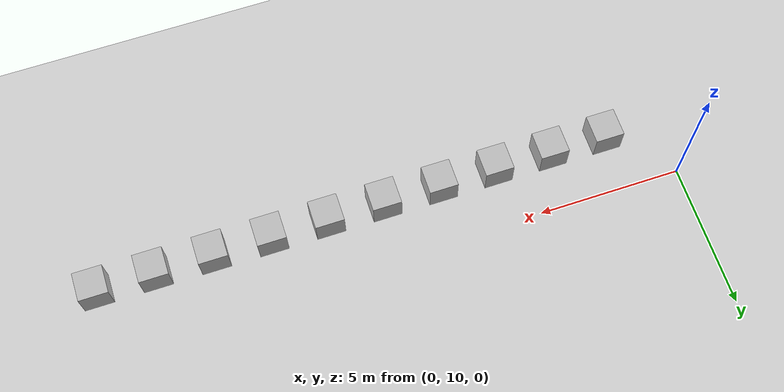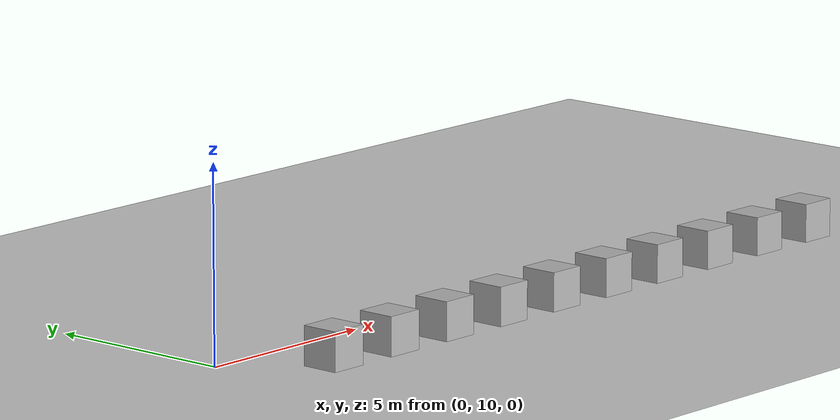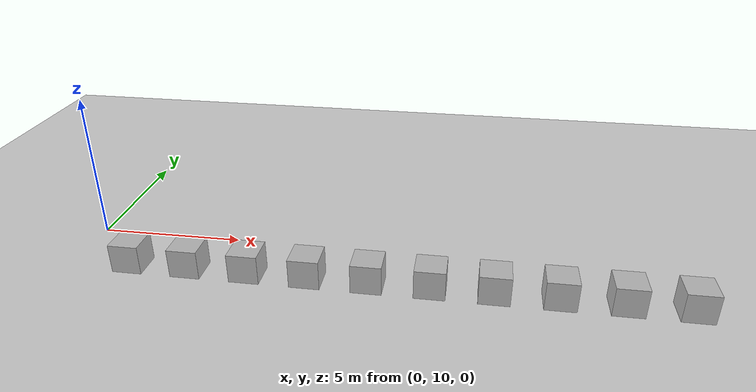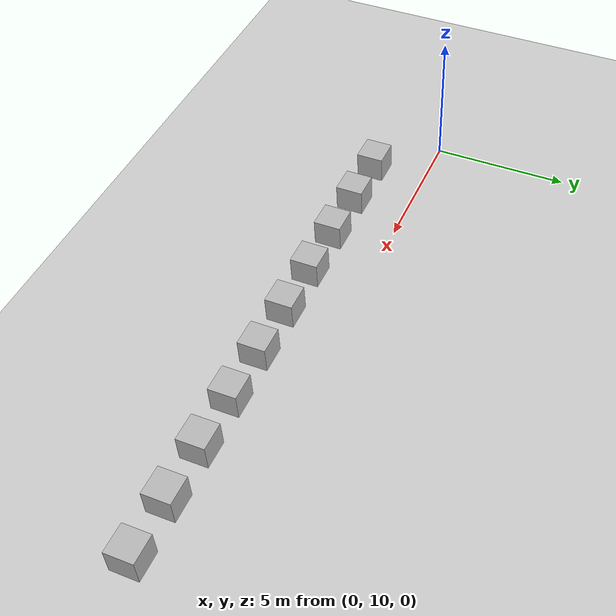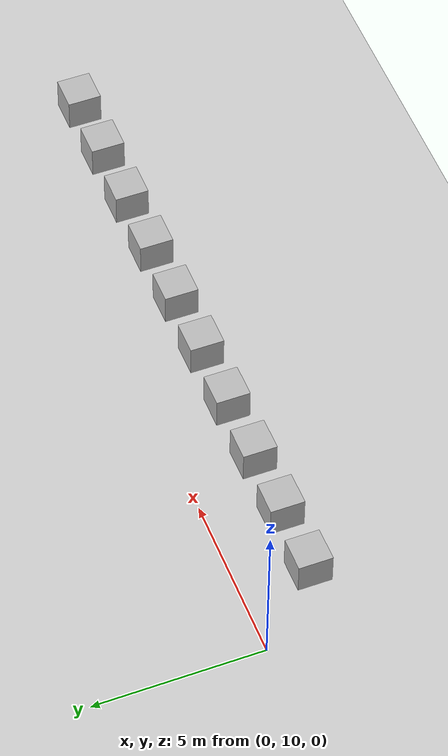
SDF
<?xml version="1.0" ?>
<sdf version="1.5">
  <world name="default">
    <gui fullscreen='0'>
      <camera name='user_camera'>
        <pose>32 0 13.5  0 0.6 3.14159</pose>
        <view_controller>orbit</view_controller>
      </camera>
    </gui>
    <scene>
      <ambient>1 1 1 1</ambient>
      <background>0.7 0.7 0.7 1</background>
      <shadows>1</shadows>
    </scene>
    <physics type="ode">
      <gravity>0 -1 -1</gravity>
      <ode>
        <solver>
          <type>quick</type>
          <iters>50</iters>
          <precon_iters>0</precon_iters>
          <sor>1.3</sor>
        </solver>
        <constraints>
          <cfm>0</cfm>
          <erp>0.2</erp>
          <contact_max_correcting_vel>100</contact_max_correcting_vel>
          <contact_surface_layer>0.001</contact_surface_layer>
        </constraints>
      </ode>
      <real_time_update_rate>0</real_time_update_rate>
      <max_step_size>0.001</max_step_size>
    </physics>
    <include>
      <uri>model://ground_plane</uri>
    </include>

    <model name="box_01_model">
      <allow_auto_disable>0</allow_auto_disable>
      <pose>2 8 0.5 0 0 0</pose>
      <link name="box_01_body">
        <inertial>
          <pose>0 0 -0.5 0 0 0</pose>
          <inertia>
            <ixx>0.16666666666666666</ixx>
            <ixy>0</ixy>
            <ixz>0</ixz>
            <iyy>0.16666666666666666</iyy>
            <iyz>0</iyz>
            <izz>0.16666666666666666</izz>
          </inertia>
          <mass>1</mass>
        </inertial>
        <collision name="box_01_geom">
          <geometry>
            <box>
              <size>1 1 1</size>
            </box>
          </geometry>
          <surface>
            <friction>
              <ode>
                <mu>0.998</mu>
                <mu2>0.998</mu2>
                <slip1>0</slip1>
                <slip2>0</slip2>
              </ode>
            </friction>
            <contact>
              <ode>
                <soft_cfm>0</soft_cfm>
                <soft_erp>0.2</soft_erp>
                <kp>100000</kp>
                <kd>1</kd>
                <max_vel>100</max_vel>
                <min_depth>0.001</min_depth>
              </ode>
            </contact>
          </surface>
        </collision>
        <visual name="box_01_geom_visual">
          <geometry>
            <box>
              <size>1 1 1</size>
            </box>
          </geometry>
          <material>
            <script>Gazebo/Rocky</script>
          </material>
        </visual>
      </link>
    </model>

    <model name="box_02_model">
      <allow_auto_disable>0</allow_auto_disable>
      <pose>4 8 0.5 0 0 0</pose>
      <link name="box_02_body">
        <inertial>
          <pose>0 0 -0.5 0 0 0</pose>
          <inertia>
            <ixx>0.16666666666666666</ixx>
            <ixy>0</ixy>
            <ixz>0</ixz>
            <iyy>0.16666666666666666</iyy>
            <iyz>0</iyz>
            <izz>0.16666666666666666</izz>
          </inertia>
          <mass>1</mass>
        </inertial>
        <collision name="box_02_geom">
          <geometry>
            <box>
              <size>1 1 1</size>
            </box>
          </geometry>
          <surface>
            <friction>
              <ode>
                <mu>0.9985</mu>
                <mu2>0.9985</mu2>
                <slip1>0</slip1>
                <slip2>0</slip2>
              </ode>
            </friction>
            <contact>
              <ode>
                <soft_cfm>0</soft_cfm>
                <soft_erp>0.2</soft_erp>
                <kp>100000</kp>
                <kd>1</kd>
                <max_vel>100</max_vel>
                <min_depth>0.001</min_depth>
              </ode>
            </contact>
          </surface>
        </collision>
        <visual name="box_02_geom_visual">
          <geometry>
            <box>
              <size>1 1 1</size>
            </box>
          </geometry>
          <material>
            <script>Gazebo/Rocky</script>
          </material>
        </visual>
      </link>
    </model>

    <model name="box_03_model">
      <allow_auto_disable>0</allow_auto_disable>
      <pose>6 8 0.5 0 0 0</pose>
      <link name="box_03_body">
        <inertial>
          <pose>0 0 -0.5 0 0 0</pose>
          <inertia>
            <ixx>0.16666666666666666</ixx>
            <ixy>0</ixy>
            <ixz>0</ixz>
            <iyy>0.16666666666666666</iyy>
            <iyz>0</iyz>
            <izz>0.16666666666666666</izz>
          </inertia>
          <mass>1</mass>
        </inertial>
        <collision name="box_03_geom">
          <geometry>
            <box>
              <size>1 1 1</size>
            </box>
          </geometry>
          <surface>
            <friction>
              <ode>
                <mu>0.999</mu>
                <mu2>0.999</mu2>
                <slip1>0</slip1>
                <slip2>0</slip2>
              </ode>
            </friction>
            <contact>
              <ode>
                <soft_cfm>0</soft_cfm>
                <soft_erp>0.2</soft_erp>
                <kp>100000</kp>
                <kd>1</kd>
                <max_vel>100</max_vel>
                <min_depth>0.001</min_depth>
              </ode>
            </contact>
          </surface>
        </collision>
        <visual name="box_03_geom_visual">
          <geometry>
            <box>
              <size>1 1 1</size>
            </box>
          </geometry>
          <material>
            <script>Gazebo/Rocky</script>
          </material>
        </visual>
      </link>
    </model>

    <model name="box_04_model">
      <allow_auto_disable>0</allow_auto_disable>
      <pose>8 8 0.5 0 0 0</pose>
      <link name="box_04_body">
        <inertial>
          <pose>0 0 -0.5 0 0 0</pose>
          <inertia>
            <ixx>0.16666666666666666</ixx>
            <ixy>0</ixy>
            <ixz>0</ixz>
            <iyy>0.16666666666666666</iyy>
            <iyz>0</iyz>
            <izz>0.16666666666666666</izz>
          </inertia>
          <mass>1</mass>
        </inertial>
        <collision name="box_04_geom">
          <geometry>
            <box>
              <size>1 1 1</size>
            </box>
          </geometry>
          <surface>
            <friction>
              <ode>
                <mu>0.9995</mu>
                <mu2>0.9995</mu2>
                <slip1>0</slip1>
                <slip2>0</slip2>
              </ode>
            </friction>
            <contact>
              <ode>
                <soft_cfm>0</soft_cfm>
                <soft_erp>0.2</soft_erp>
                <kp>100000</kp>
                <kd>1</kd>
                <max_vel>100</max_vel>
                <min_depth>0.001</min_depth>
              </ode>
            </contact>
          </surface>
        </collision>
        <visual name="box_04_geom_visual">
          <geometry>
            <box>
              <size>1 1 1</size>
            </box>
          </geometry>
          <material>
            <script>Gazebo/Rocky</script>
          </material>
        </visual>
      </link>
    </model>

    <model name="box_05_model">
      <allow_auto_disable>0</allow_auto_disable>
      <pose>10 8 0.5 0 0 0</pose>
      <link name="box_05_body">
        <inertial>
          <pose>0 0 -0.5 0 0 0</pose>
          <inertia>
            <ixx>0.16666666666666666</ixx>
            <ixy>0</ixy>
            <ixz>0</ixz>
            <iyy>0.16666666666666666</iyy>
            <iyz>0</iyz>
            <izz>0.16666666666666666</izz>
          </inertia>
          <mass>1</mass>
        </inertial>
        <collision name="box_05_geom">
          <geometry>
            <box>
              <size>1 1 1</size>
            </box>
          </geometry>
          <surface>
            <friction>
              <ode>
                <mu>1</mu>
                <mu2>1</mu2>
                <slip1>0</slip1>
                <slip2>0</slip2>
              </ode>
            </friction>
            <contact>
              <ode>
                <soft_cfm>0</soft_cfm>
                <soft_erp>0.2</soft_erp>
                <kp>100000</kp>
                <kd>1</kd>
                <max_vel>100</max_vel>
                <min_depth>0.001</min_depth>
              </ode>
            </contact>
          </surface>
        </collision>
        <visual name="box_05_geom_visual">
          <geometry>
            <box>
              <size>1 1 1</size>
            </box>
          </geometry>
          <material>
            <script>Gazebo/Rocky</script>
          </material>
        </visual>
      </link>
    </model>

    <model name="box_06_model">
      <allow_auto_disable>0</allow_auto_disable>
      <pose>12 8 0.5 0 0 0</pose>
      <link name="box_06_body">
        <inertial>
          <pose>0 0 -0.5 0 0 0</pose>
          <inertia>
            <ixx>0.16666666666666666</ixx>
            <ixy>0</ixy>
            <ixz>0</ixz>
            <iyy>0.16666666666666666</iyy>
            <iyz>0</iyz>
            <izz>0.16666666666666666</izz>
          </inertia>
          <mass>1</mass>
        </inertial>
        <collision name="box_06_geom">
          <geometry>
            <box>
              <size>1 1 1</size>
            </box>
          </geometry>
          <surface>
            <friction>
              <ode>
                <mu>1.01</mu>
                <mu2>1.01</mu2>
                <slip1>0</slip1>
                <slip2>0</slip2>
              </ode>
            </friction>
            <contact>
              <ode>
                <soft_cfm>0</soft_cfm>
                <soft_erp>0.2</soft_erp>
                <kp>100000</kp>
                <kd>1</kd>
                <max_vel>100</max_vel>
                <min_depth>0.001</min_depth>
              </ode>
            </contact>
          </surface>
        </collision>
        <visual name="box_06_geom_visual">
          <geometry>
            <box>
              <size>1 1 1</size>
            </box>
          </geometry>
          <material>
            <script>Gazebo/Rocky</script>
          </material>
        </visual>
      </link>
    </model>

    <model name="box_slip_01_model">
      <allow_auto_disable>0</allow_auto_disable>
      <pose>14 8 0.5 0 0 0</pose>
      <link name="box_slip_01_body">
        <inertial>
          <pose>0 0 -0.5 0 0 0</pose>
          <inertia>
            <ixx>0.16666666666666666</ixx>
            <ixy>0</ixy>
            <ixz>0</ixz>
            <iyy>0.16666666666666666</iyy>
            <iyz>0</iyz>
            <izz>0.16666666666666666</izz>
          </inertia>
          <mass>1</mass>
        </inertial>
        <collision name="box_slip_01_geom">
          <geometry>
            <box>
              <size>1 1 1</size>
            </box>
          </geometry>
          <surface>
            <friction>
              <ode>
                <mu>1.01</mu>
                <mu2>1.01</mu2>
                <slip1>0.1</slip1>
                <slip2>0.1</slip2>
              </ode>
            </friction>
            <contact>
              <ode>
                <soft_cfm>0</soft_cfm>
                <soft_erp>0.2</soft_erp>
                <kp>100000</kp>
                <kd>1</kd>
                <max_vel>100</max_vel>
                <min_depth>0.001</min_depth>
              </ode>
            </contact>
          </surface>
        </collision>
        <visual name="box_slip_01_geom_visual">
          <geometry>
            <box>
              <size>1 1 1</size>
            </box>
          </geometry>
          <material>
            <script>Gazebo/Rocky</script>
          </material>
        </visual>
      </link>
    </model>

    <model name="box_slip_02_model">
      <allow_auto_disable>0</allow_auto_disable>
      <pose>16 8 0.5 0 0 0</pose>
      <link name="box_slip_02_body">
        <inertial>
          <pose>0 0 -0.5 0 0 0</pose>
          <inertia>
            <ixx>0.8333333333333334</ixx>
            <ixy>0</ixy>
            <ixz>0</ixz>
            <iyy>0.8333333333333334</iyy>
            <iyz>0</iyz>
            <izz>0.8333333333333334</izz>
          </inertia>
          <mass>5</mass>
        </inertial>
        <collision name="box_slip_02_geom">
          <geometry>
            <box>
              <size>1 1 1</size>
            </box>
          </geometry>
          <surface>
            <friction>
              <ode>
                <mu>1.01</mu>
                <mu2>1.01</mu2>
                <slip1>0.1</slip1>
                <slip2>0.1</slip2>
              </ode>
            </friction>
            <contact>
              <ode>
                <soft_cfm>0</soft_cfm>
                <soft_erp>0.2</soft_erp>
                <kp>100000</kp>
                <kd>1</kd>
                <max_vel>100</max_vel>
                <min_depth>0.001</min_depth>
              </ode>
            </contact>
          </surface>
        </collision>
        <visual name="box_slip_02_geom_visual">
          <geometry>
            <box>
              <size>1 1 1</size>
            </box>
          </geometry>
          <material>
            <script>Gazebo/Rocky</script>
          </material>
        </visual>
      </link>
    </model>

    <model name="box_slip_03_model">
      <allow_auto_disable>0</allow_auto_disable>
      <pose>18 8 0.5 0 0 0</pose>
      <link name="box_slip_03_body">
        <inertial>
          <pose>0 0 -0.5 0 0 0</pose>
          <inertia>
            <ixx>0.16666666666666666</ixx>
            <ixy>0</ixy>
            <ixz>0</ixz>
            <iyy>0.16666666666666666</iyy>
            <iyz>0</iyz>
            <izz>0.16666666666666666</izz>
          </inertia>
          <mass>1</mass>
        </inertial>
        <collision name="box_slip_03_geom">
          <geometry>
            <box>
              <size>1 1 1</size>
            </box>
          </geometry>
          <surface>
            <friction>
              <ode>
                <mu>2.01</mu>
                <mu2>2.01</mu2>
                <slip1>0.5</slip1>
                <slip2>0.5</slip2>
              </ode>
            </friction>
            <contact>
              <ode>
                <soft_cfm>0</soft_cfm>
                <soft_erp>0.2</soft_erp>
                <kp>100000</kp>
                <kd>1</kd>
                <max_vel>100</max_vel>
                <min_depth>0.001</min_depth>
              </ode>
            </contact>
          </surface>
        </collision>
        <visual name="box_slip_03_geom_visual">
          <geometry>
            <box>
              <size>1 1 1</size>
            </box>
          </geometry>
          <material>
            <script>Gazebo/Rocky</script>
          </material>
        </visual>
      </link>
    </model>

    <model name="box_slip_04_model">
      <allow_auto_disable>0</allow_auto_disable>
      <pose>20 8 0.5 0 0 0</pose>
      <link name="box_slip_04_body">
        <inertial>
          <pose>0 0 -0.5 0 0 0</pose>
          <inertia>
            <ixx>0.8333333333333334</ixx>
            <ixy>0</ixy>
            <ixz>0</ixz>
            <iyy>0.8333333333333334</iyy>
            <iyz>0</iyz>
            <izz>0.8333333333333334</izz>
          </inertia>
          <mass>5</mass>
        </inertial>
        <collision name="box_slip_04_geom">
          <geometry>
            <box>
              <size>1 1 1</size>
            </box>
          </geometry>
          <surface>
            <friction>
              <ode>
                <mu>1.01</mu>
                <mu2>1.01</mu2>
                <slip1>0.5</slip1>
                <slip2>0.5</slip2>
              </ode>
            </friction>
            <contact>
              <ode>
                <soft_cfm>0</soft_cfm>
                <soft_erp>0.2</soft_erp>
                <kp>100000</kp>
                <kd>1</kd>
                <max_vel>100</max_vel>
                <min_depth>0.001</min_depth>
              </ode>
            </contact>
          </surface>
        </collision>
        <visual name="box_slip_04_geom_visual">
          <geometry>
            <box>
              <size>1 1 1</size>
            </box>
          </geometry>
          <material>
            <script>Gazebo/Rocky</script>
          </material>
        </visual>
      </link>
    </model>

  </world>
</sdf>
